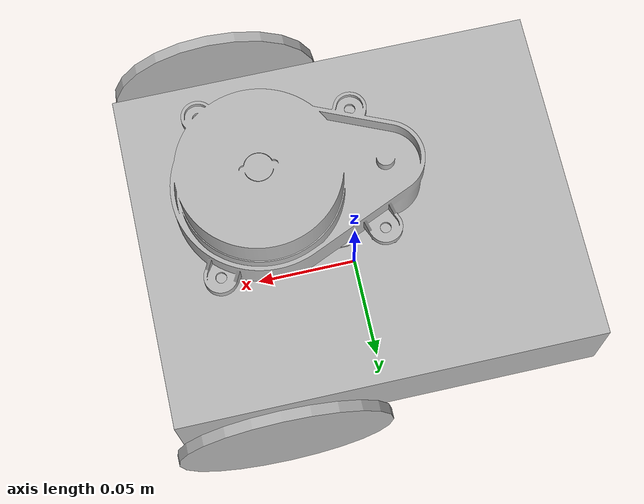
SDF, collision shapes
<?xml version='1.0'?>
<sdf version='1.4'>
    <model name='puzzlebot' canonical_link='chassis'>

        <link name='chassis'>
            <pose relative_to='__model__'>0 0 0.05 1.5708 0 1.5708</pose>

            <inertial>
                <mass>0.8</mass>
                <pose>-0.05 0 0 0 0 0</pose>
                <inertia>
                    <ixx>0.004</ixx>
                    <iyy>0.004</iyy>
                    <izz>0.004</izz>
                    <ixy>0</ixy>
                    <ixz>0</ixz>
                    <iyz>0</iyz>
                </inertia>
            </inertial>

            <visual name='visual'>
                <geometry>
                    <mesh>
                        <uri>./meshes/chassis.stl</uri>
                    </mesh>
                </geometry>
            </visual>

            <collision name='collision'>
                <pose>0 0 0 0 1.5708 1.5708</pose>
                <geometry>
                    <box>
                        <size>0.2 0.16 0.046</size>
                    </box>
                </geometry>
            </collision>

            <sensor type="camera" name="camera">
                <pose relative_to='camera_frame'>0 0 0 0 -1.5708 -1.5708</pose>
                <camera>
                    <horizontal_fov>1.047</horizontal_fov>
                    <image>
                        <width>1280</width>
                        <height>720</height>
                    </image>
                    <clip>
                        <near>0.1</near>
                        <far>100</far>
                    </clip>
                </camera>
                <always_on>1</always_on>
                <update_rate>30</update_rate>
                <visualize>false</visualize>
            </sensor>
            <sensor name="rplidar" type="gpu_lidar">
                <pose relative_to='rplidar_frame'>0 0 0 0 0 0</pose>
                <update_rate>10</update_rate>
                <ray>
                    <scan>
                    <horizontal>
                        <samples>720</samples>
                        <resolution>1</resolution>
                        <min_angle>-3.14</min_angle>
                        <max_angle>3.14</max_angle>
                    </horizontal>
                    <vertical>
                        <samples>1</samples>
                        <resolution>1</resolution>
                        <min_angle>0</min_angle>
                        <max_angle>0</max_angle>
                    </vertical>
                    </scan>
                    <range>
                    <min>0.1</min>
                    <max>12.0</max>
                    <resolution>0.01</resolution>
                    </range>
                </ray>
                <always_on>1</always_on>
                <visualize>true</visualize>
            </sensor>
        </link>
        <link name="lidar_link">
            <pose relative_to="chassis">0 0.09 0.04 3.141592 -1.57 1.57</pose>
            <inertial>
                <mass>0.1</mass>
                <inertia>
                <ixx>1e-5</ixx><iyy>1e-5</iyy><izz>1e-5</izz>
                <ixy>0</ixy><ixz>0</ixz><iyz>0</iyz>
                </inertia>
            </inertial>

            <!-- Visual mesh -->
            <visual name="lidar_visual">
                <geometry>
                <mesh>
                    <uri>./meshes/LiDAR.stl</uri>
                    <scale>0.001 0.001 0.001</scale>
                </mesh>
                </geometry>
                <material name="black">
                    <color rgba="0 0 0 1.0"/>
                </material>
            </visual>

            <!-- Optional-->
            <collision name="lidar_collision">
                <geometry>
                <mesh>
                    <uri>./meshes/LiDAR.stl</uri>
                    <scale>0.001 0.001 0.001</scale>
                </mesh>
                </geometry>
            </collision>
        </link>
        <link name='right_wheel'>
            <pose relative_to="chassis">-0.09 0 0.05 0 1.5708 0</pose>

            <inertial>
                <mass>0.05</mass>
                <inertia>
                    <ixx>0.002</ixx>
                    <iyy>0.002</iyy>
                    <izz>0.002</izz>
                    <ixy>0</ixy>
                    <ixz>0</ixz>
                    <iyz>0</iyz>
                </inertia>
            </inertial>

            <visual name='visual'>
                <geometry>
                    <mesh>
                        <uri>./meshes/wheel.stl</uri>
                    </mesh>
                </geometry>
                <material name="black">
                    <color rgba="0 0 0 1.0"/>
                </material>
            </visual>

            <collision name='collision'>
                <pose>0 -0.0025 0 0 0 0</pose>
                <geometry>
                    <cylinder>
                        <radius>0.05</radius>
                        <length>0.005</length>
                    </cylinder>
                </geometry>
                <surface>
                    <friction>
                        <ode>
                            <mu>1.0</mu>
                            <mu2>1.0</mu2>
                        </ode>
                    </friction>
                </surface>
            </collision>

        </link>

        <link name='left_wheel'>
            <pose relative_to="chassis">0.09 0 0.05 -1.5708 0 1.5708</pose>

            <inertial>
                <mass>0.05</mass>
                <inertia>
                    <ixx>0.002</ixx>
                    <iyy>0.002</iyy>
                    <izz>0.002</izz>
                    <ixy>0</ixy>
                    <ixz>0</ixz>
                    <iyz>0</iyz>
                </inertia>
            </inertial>

            <visual name='visual'>
                <geometry>
                    <mesh>
                        <uri>./meshes/wheel.stl</uri>
                    </mesh>
                </geometry>
                <material name="black">
                    <color rgba="0 0 0 1.0"/>
                </material>
            </visual>

            <collision name='collision'>
                <pose>0 -0.0025 0 0 0 0</pose>
                <geometry>
                    <cylinder>
                        <radius>0.05</radius>
                        <length>0.005</length>
                    </cylinder>
                </geometry>
                <surface>
                    <friction>
                        <ode>
                            <mu>1.0</mu>
                            <mu2>1.0</mu2>
                        </ode>
                    </friction>
                </surface>
            </collision>

        </link>

        <frame name="caster_frame" attached_to='chassis'>
            <pose>0 -0.044 -0.095 0 0 0</pose>
        </frame>

        <link name='caster'>
            <pose relative_to='caster_frame'/>

            <inertial>
                <mass>0.01</mass>
                <inertia>
                    <ixx>0.0000025</ixx>
                    <iyy>0.0000025</iyy>
                    <izz>0.0000025</izz>
                    <ixy>0</ixy>
                    <ixz>0</ixz>
                    <iyz>0</iyz>
                </inertia>
            </inertial>

            <visual name='visual'>
                <geometry>
                    <sphere>
                        <radius>0.006</radius>
                    </sphere>
                </geometry>
                <material>
                    <ambient>0.0 1 0.0 1</ambient>
                    <diffuse>0.0 1 0.0 1</diffuse>
                    <specular>0.0 1 0.0 1</specular>
                </material>
            </visual>

            <collision name='collision'>
                <geometry>
                    <sphere>
                        <radius>0.006</radius>
                    </sphere>
                </geometry>
            </collision>
        </link>

        <joint name='left_wheel_joint' type='revolute'>
            <pose relative_to='left_wheel'/>
            <parent>chassis</parent>
            <child>left_wheel</child>
            <axis>
                <xyz expressed_in='__model__'>0 1 0</xyz>
                <limit>
                    <lower>-1.79769e+308</lower>
                    <upper>1.79769e+308</upper>
                    <effort>1</effort>
                </limit>
               <dynamics>
                   <friction>0.1</friction>
               </dynamics>
            </axis>
        </joint>

        <joint name='right_wheel_joint' type='revolute'>
            <pose relative_to='right_wheel'/>
            <parent>chassis</parent>
            <child>right_wheel</child>
            <axis>
                <xyz expressed_in='__model__'>0 1 0</xyz>
                <limit>
                    <lower>-1.79769e+308</lower>
                    <upper>1.79769e+308</upper>
                    <effort>1</effort>
                </limit>
               <dynamics>
                   <friction>0.1</friction>
               </dynamics>
            </axis>
        </joint>

        <joint name='caster_wheel' type='ball'>
            <parent>chassis</parent>
            <child>caster</child>
        </joint>
        <joint name="lidar_joint" type="fixed">
            <parent>chassis</parent>
            <child>lidar_link</child>
        </joint>

        <!-- Puzzlebot differential drive plugin -->
        <plugin name="DiffDynamicPlugin" filename="libDiffDynamicPlugin.so">
            <leftJoint>left_wheel_joint</leftJoint>
            <rightJoint>right_wheel_joint</rightJoint>
            <cmd_R_topic>VelocitySetR</cmd_R_topic>
            <cmd_L_topic>VelocitySetL</cmd_L_topic>
            <cmd_vel_topic>cmd_vel</cmd_vel_topic>
            <enc_R_topic>VelocityEncR</enc_R_topic>
            <enc_L_topic>VelocityEncL</enc_L_topic>
            <robot_vel_topic>robot_vel</robot_vel_topic>
            <mot_Vmax>5</mot_Vmax>
            <mot_J>0.0005</mot_J>
            <mot_R>2</mot_R>
            <mot_L>0.01</mot_L>
            <mot_K>0.01</mot_K>
            <mot_b>0.00001</mot_b>
            <mot_gear>34</mot_gear>
            <robot_width>0.18</robot_width>
            <wheel_radius>0.05</wheel_radius>
            <pid_Kp>0.1</pid_Kp>
            <pid_Ti>0.05</pid_Ti>
            <pid_Td>0</pid_Td>
            <input_type>1</input_type>
            <rate>100</rate>
        </plugin>
        <!-- Uncomment if using for ball interactions -->
        <frame name="camera_frame" attached_to='chassis'>
            <pose>0 0.1 0.08 0 0 0</pose>
        </frame>

        <plugin
            filename="gz-sim-sensors-system"
            name="gz::sim::systems::Sensors">
            <render_engine>ogre2</render_engine>
        </plugin>
        <!--For navigation-->
        <frame name="rplidar_frame" attached_to='chassis'>
            <pose>0 0.11 0.05 1.5708 1.5708 0</pose>
        </frame>
    </model>

</sdf>
